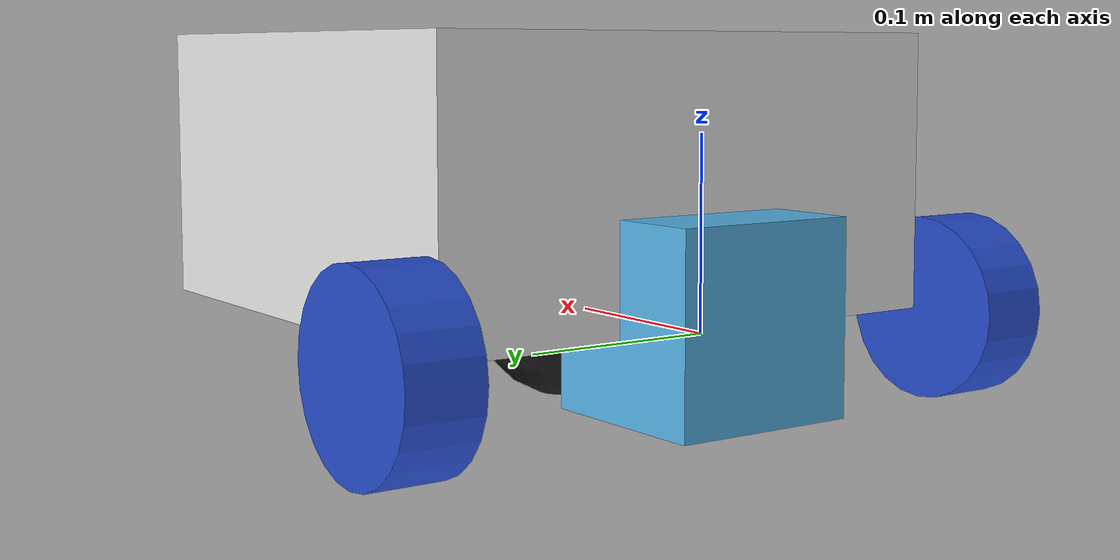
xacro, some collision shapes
<?xml version="1.0"?>
<robot xmlns:xacro="http://www.ros.org/wiki/xacro" name="robot">
    <xacro:include filename="inertial_macros.xacro" />
    <xacro:include filename="lidar.xacro" />
    <xacro:include filename="imu_sensor.xacro" />
    <xacro:include filename="ros2_control.xacro" />
    <xacro:include filename="robot_core.xacro" />

</robot>

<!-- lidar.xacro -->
<robot xmlns:xacro="http://www.ros.org/wiki/xacro">

  <joint name="laser_joint" type="fixed">
    <parent link="base_link"/>
    <child link="lidar_link"/>
    <origin xyz="0.12 0 0.1" rpy="0 0 0"/>
  </joint>

  <link name="lidar_link">
    <visual>
      <geometry>
        <cylinder radius="0.05" length="0.04"/>
      </geometry>
      <material name="red"/>
    </visual>
    <collision>
      <geometry>
        <cylinder radius="0.05" length="0.04"/>
      </geometry>
    </collision>
    <xacro:inertial_cylinder mass="0.1" length="0.04" radius="0.05">
      <origin xyz="0 0 0" rpy="0 0 0"/>
    </xacro:inertial_cylinder>
  </link>

  <gazebo reference="lidar_link">
    <material>Gazebo/Red</material>

    <!-- 3D LiDAR publishing PointCloud2 -->
    <sensor name="lidar_3d" type="gpu_ray">
      <pose>0 0 0 0 0 0</pose>
      <visualize>false</visualize>
      <update_rate>10</update_rate>
      <ray>
        <scan>
          <horizontal>
            <samples>360</samples>
            <resolution>1</resolution>
            <min_angle>-3.14159</min_angle>
            <max_angle>3.14159</max_angle>
          </horizontal>
          <vertical>
            <samples>16</samples>
            <resolution>1</resolution>
            <min_angle>-0.523599</min_angle>  <!-- -30 deg -->
            <max_angle>0.523599</max_angle>   <!-- +30 deg -->
          </vertical>
        </scan>
        <range>
          <min>0.3</min>
          <max>15.0</max>
          <resolution>0.01</resolution>
        </range>
        <noise>
          <type>gaussian</type>
          <mean>0.0</mean>
          <stddev>0.01</stddev>
        </noise>
      </ray>

      <plugin name="lidar_points" filename="libgazebo_ros_ray_sensor.so">
        <ros>
          <remapping>~/out:=scan_cloud</remapping>
        </ros>
        <output_type>sensor_msgs/PointCloud2</output_type>
        <frame_name>lidar_link</frame_name>
      </plugin>
    </sensor>
  </gazebo>
</robot>

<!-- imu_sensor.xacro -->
<robot xmlns:xacro="http://www.ros.org/wiki/xacro">

<link name="imu_link">
  <visual>
    <geometry>
      <box size="0.1 0.1 0.1"/>
    </geometry>
  </visual>

  <collision>
    <geometry>
      <box size="0.1 0.1 0.1"/>
    </geometry>
  </collision>

  <xacro:inertial_box mass="0.1" x="0.1" y="0.1" z="0.15">
    <origin xyz="0 0 0" rpy="${pi/2} 0 ${pi/2}"/>
  </xacro:inertial_box>

</link>

<joint name="imu_joint" type="fixed">
  <parent link="base_link"/>
  <child link="imu_link"/>
  <origin xyz="0 0 0.01"/>
</joint>

 <gazebo reference="imu_link">
  <sensor name="imu_sensor" type="imu">
   <plugin filename="libgazebo_ros_imu_sensor.so" name="imu_plugin">
      <ros>
        <namespace>/demo</namespace>
        <remapping>~/out:=imu</remapping>
      </ros>
      <initial_orientation_as_reference>false</initial_orientation_as_reference>
    </plugin>
    <always_on>true</always_on>
    <update_rate>10</update_rate>
    <visualize>true</visualize>
    <imu>
      <angular_velocity>
        <x>
          <noise type="gaussian">
            <mean>0.0</mean>
            <stddev>2e-4</stddev>
            <bias_mean>0.0000075</bias_mean>
            <bias_stddev>0.0000008</bias_stddev>
          </noise>
        </x>
        <y>
          <noise type="gaussian">
            <mean>0.0</mean>
            <stddev>2e-4</stddev>
            <bias_mean>0.0000075</bias_mean>
            <bias_stddev>0.0000008</bias_stddev>
          </noise>
        </y>
        <z>
          <noise type="gaussian">
            <mean>0.0</mean>
            <stddev>2e-4</stddev>
            <bias_mean>0.0000075</bias_mean>
            <bias_stddev>0.0000008</bias_stddev>
          </noise>
        </z>
      </angular_velocity>
      <linear_acceleration>
        <x>
          <noise type="gaussian">
            <mean>0.0</mean>
            <stddev>1.7e-2</stddev>
            <bias_mean>0.1</bias_mean>
            <bias_stddev>0.001</bias_stddev>
          </noise>
        </x>
        <y>
          <noise type="gaussian">
            <mean>0.0</mean>
            <stddev>1.7e-2</stddev>
            <bias_mean>0.1</bias_mean>
            <bias_stddev>0.001</bias_stddev>
          </noise>
        </y>
        <z>
          <noise type="gaussian">
            <mean>0.0</mean>
            <stddev>1.7e-2</stddev>
            <bias_mean>0.1</bias_mean>
            <bias_stddev>0.001</bias_stddev>
          </noise>
        </z>
      </linear_acceleration>
    </imu>
  </sensor>
</gazebo>

</robot>

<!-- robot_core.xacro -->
<robot xmlns:xacro="http://www.ros.org/wiki/xacro">
    <xacro:include filename="colors.xacro" />

    <link name="base_footprint">
    </link>

    <link name="base_link">
        <visual>
            <origin xyz="0 0.055 0" rpy="0 0 ${pi/2}"/>
            <geometry>
                <!-- box size="0.3 0.3 0.15"/ -->

                <mesh filename="file://$(find mpcc)/meshes/body.stl" scale="0.0013 0.001 0.004"/>

            </geometry>
            <material name="white"/>
        </visual>
        <collision>
            <origin xyz="0.15 0 0.075" rpy="0 0 0"/>
            <geometry>
                <box size="0.3 0.3 0.15"/>
            </geometry>
        </collision>
        <xacro:inertial_box mass="0.5" x="0.3" y="0.3" z="0.15">
            <origin xyz="0.15 0 0.075" rpy="0 0 0"/>
        </xacro:inertial_box>
    </link>
    <gazebo reference="base_link">
        <material>Gazebo/White</material>
    </gazebo>

    <joint name="base_joint" type="fixed">
        <parent link="base_footprint"/>
        <child link="base_link"/>
        <origin xyz="0 0 0"/>
    </joint>

    <!-- LEFT WHEEL -->

    <joint name="left_wheel_joint" type="continuous">
        <parent link="base_link"/>
        <child link="left_wheel"/>
        <origin xyz="0 0.175 0" rpy="-${pi/2} 0 0"/>
        <axis xyz="0 0 1"/>
    </joint>

    <link name="left_wheel">
        <visual>
            <geometry>
                <cylinder length="0.04" radius="0.05" />
            </geometry>
            <material name="blue"/>
        </visual>
        <collision>
            <geometry>
                <cylinder length="0.04" radius="0.05" />
            </geometry>
            <material name="blue"/>
        </collision>
        <xacro:inertial_cylinder mass="0.1" length="0.05" radius="0.05">
            <origin xyz="0 0 0" rpy="0 0 0"/>
        </xacro:inertial_cylinder>
    </link>

    <gazebo reference="left_wheel">
        <material>Gazebo/Blue</material>
    </gazebo>

    <!-- RIGHT WHEEL -->

    <joint name="right_wheel_joint" type="continuous">
        <parent link="base_link"/>
        <child link="right_wheel"/>
        <origin xyz="0 -0.175 0" rpy="${pi/2} 0 0"/>
        <axis xyz="0 0 -1"/>
    </joint>

    <link name="right_wheel">
        <visual>
            <geometry>
                <cylinder length="0.04" radius="0.05" />
            </geometry>
            <material name="blue"/>
        </visual>
        <collision>
            <geometry>
                <cylinder length="0.04" radius="0.05" />
            </geometry>
            <material name="blue"/>
        </collision>
        <xacro:inertial_cylinder mass="0.1" length="0.05" radius="0.05">
            <origin xyz="0 0 0" rpy="0 0 0"/>
        </xacro:inertial_cylinder>
    </link>

    <gazebo reference="right_wheel">
        <material>Gazebo/Blue</material>
    </gazebo>

    <!-- CASTER WHEEL -->

    <joint name="caster_wheel_joint" type="fixed">
        <parent link="base_link"/>
        <child link="caster_wheel"/>
        <origin xyz="0.12 0 0" rpy="0 0 0"/>
    </joint>

    <link name="caster_wheel">
        <visual>
            <geometry>
                <sphere radius="0.05" />
            </geometry>
            <material name="black"/>
        </visual>
        <collision>
            <geometry>
                <sphere radius="0.05" />
            </geometry>
            <material name="black"/>
        </collision>
        <xacro:inertial_sphere mass="0.1" radius="0.05">
            <origin xyz="0 0 0" rpy="0 0 0"/>
        </xacro:inertial_sphere>
    </link>
    <gazebo reference="caster_wheel">
        <material>Gazebo/Black</material>
    </gazebo>
    <gazebo reference="caster_wheel">
        <material>Gazebo/Black</material>
        <mu1 value="0.001"/>
        <mu2 value="0.001"/>
    </gazebo>

    <material name="red">
        <color rgba="1 0 0 1"/>
    </material>

</robot>
